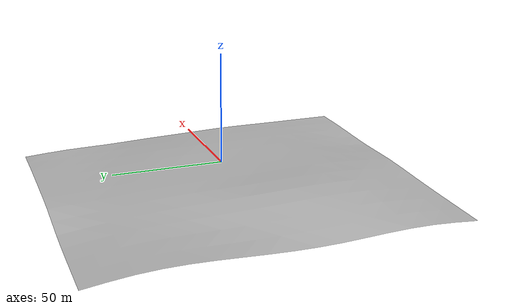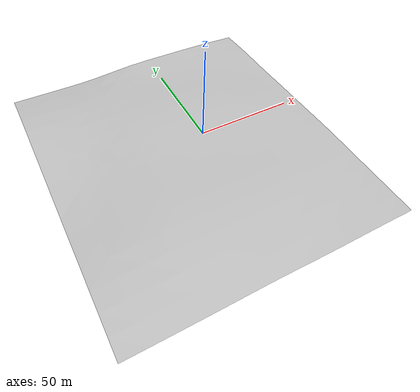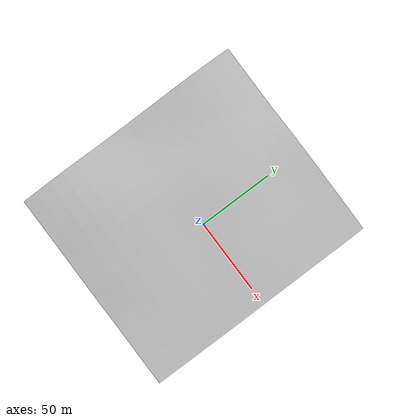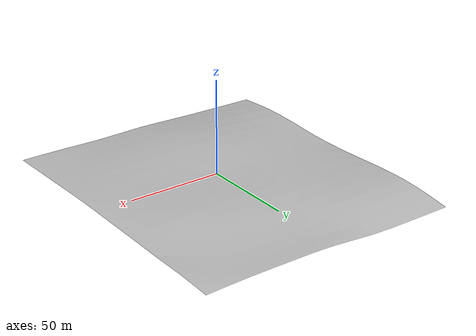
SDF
<?xml version='1.0' encoding='ASCII'?>
<sdf version='1.4'>
  <world name='solar_farm'>
    <physics type='ode'>
      <max_step_size>0.017</max_step_size>
      <real_time_factor>1.0</real_time_factor>
      <dart>
    <collision_detector>bullet</collision_detector>
    <solver>
      <solver_type>pgs</solver_type>
    </solver>
  </dart>
      <gravity>0 0 -9.8</gravity>
    </physics>
    <plugin name='gz::sim::systems::Physics' filename='libgz-sim-physics-system.so'/>
    <plugin name='gz::sim::systems::UserCommands' filename='libgz-sim-user-commands-system.so'/>
    <plugin name='gz::sim::systems::SceneBroadcaster' filename='libgz-sim-scene-broadcaster-system.so'/>

    <scene>
      <ambient>1 1 1 1</ambient>
      <background>0.3 0.7 0.9 1</background>
      <shadows>0</shadows>
      <grid>false</grid>
      <shadows>1</shadows>
    </scene>
    <light name='sun' type='directional'>
      <cast_shadows>1</cast_shadows>
      <pose>0 0 10 0 -0 0</pose>
      <diffuse>1.0 1.0 1.0 1</diffuse>
      <specular>0.2 0.2 0.2 1</specular>
      <attenuation>
        <range>1000</range>
        <constant>0.9</constant>
        <linear>0.01</linear>
        <quadratic>0.001</quadratic>
      </attenuation>
      <direction>-0.5 0.5 -1.0</direction>
    </light>

    <!-- Origin placed near the Big Red Barn near Stonewall, MB, Canada -->
    <spherical_coordinates>
      <surface_model>EARTH_WGS84</surface_model>
      <latitude_deg>50.109461</latitude_deg>
      <longitude_deg>-97.318978</longitude_deg>
      <elevation>250</elevation>
      <heading_deg>0</heading_deg>
    </spherical_coordinates>

    <model name='solar_farm'>
      <pose>0 0 0 0 0 3.14159</pose>
      <static>true</static>
      <link name='solar_farm'>
        <collision name='solar_farm_collision'>
          <geometry>
            <mesh>
              <uri>
                model://solar_farm/agriculture_world.dae
              </uri>
            </mesh>
          </geometry>
        </collision>
        <visual name='solar_farm_visual'>
          <geometry>
            <mesh>
              <uri>
                model://solar_farm/agriculture_world.dae
              </uri>
            </mesh>
          </geometry>
        </visual>
      </link>
    </model>
  </world>
</sdf>
